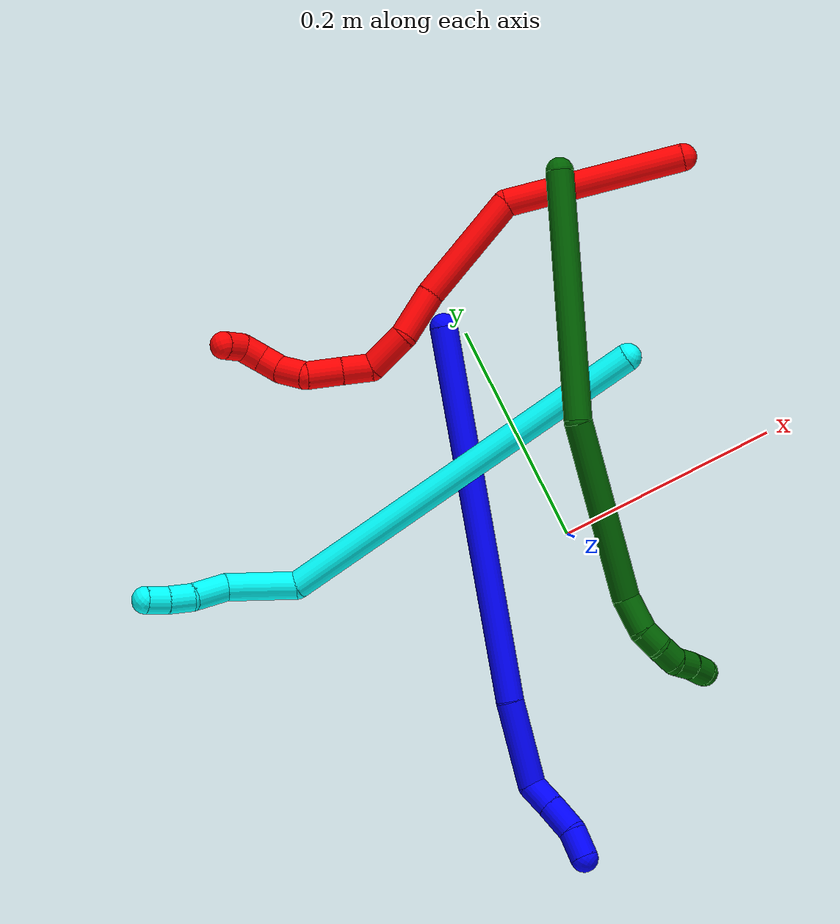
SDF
<sdf version="1.7">
 <world name="default">
  <model name="1">
   <static>0</static>
   <link name="1">
    <collision name="collision-cylinder-e_1_1_4">
     <pose>0.012416 -0.123575 -0.114828 2.31952 0.073472 0.168244</pose>
     <geometry><cylinder><radius>0.0125</radius><length>0.338292</length></cylinder></geometry>
     <surface>
      <friction><ode><mu>1.16</mu><mu2>1.16</mu2><slip1>0</slip1><slip2>0</slip2></ode></friction>
      <contact><ode><kp>1e+06</kp><kd>1</kd><max_vel>0</max_vel><min_depth>0.001</min_depth></ode></contact>
     </surface>
    </collision>
    <visual name="visual-cylinder-e_1_1_4">
     <pose>0.012416 -0.123575 -0.114828 2.31952 0.073472 0.168244</pose>
     <geometry><cylinder><radius>0.0125</radius><length>0.338292</length></cylinder></geometry>
     <material><ambient>0 0 1 1</ambient></material>
    </visual>
    <collision name="collision-cylinder-e_2_4_5">
     <pose>0.023035 -0.27496 -0.257169 2.35083 -0.045916 -0.109925</pose>
     <geometry><cylinder><radius>0.0125</radius><length>0.078322</length></cylinder></geometry>
     <surface>
      <friction><ode><mu>1.16</mu><mu2>1.16</mu2><slip1>0</slip1><slip2>0</slip2></ode></friction>
      <contact><ode><kp>1e+06</kp><kd>1</kd><max_vel>0</max_vel><min_depth>0.001</min_depth></ode></contact>
     </surface>
    </collision>
    <visual name="visual-cylinder-e_2_4_5">
     <pose>0.023035 -0.27496 -0.257169 2.35083 -0.045916 -0.109925</pose>
     <geometry><cylinder><radius>0.0125</radius><length>0.078322</length></cylinder></geometry>
     <material><ambient>0 0 1 1</ambient></material>
    </visual>
    <collision name="collision-cylinder-e_3_5_6">
     <pose>0.023691 -0.304545 -0.297652 3.00558 0.18525 1.87624</pose>
     <geometry><cylinder><radius>0.0125</radius><length>0.026637</length></cylinder></geometry>
     <surface>
      <friction><ode><mu>1.16</mu><mu2>1.16</mu2><slip1>0</slip1><slip2>0</slip2></ode></friction>
      <contact><ode><kp>1e+06</kp><kd>1</kd><max_vel>0</max_vel><min_depth>0.001</min_depth></ode></contact>
     </surface>
    </collision>
    <visual name="visual-cylinder-e_3_5_6">
     <pose>0.023691 -0.304545 -0.297652 3.00558 0.18525 1.87624</pose>
     <geometry><cylinder><radius>0.0125</radius><length>0.026637</length></cylinder></geometry>
     <material><ambient>0 0 1 1</ambient></material>
    </visual>
    <collision name="collision-cylinder-e_4_6_7">
     <pose>0.029297 -0.30868 -0.325108 2.9801 0.211583 1.83925</pose>
     <geometry><cylinder><radius>0.0125</radius><length>0.030024</length></cylinder></geometry>
     <surface>
      <friction><ode><mu>1.16</mu><mu2>1.16</mu2><slip1>0</slip1><slip2>0</slip2></ode></friction>
      <contact><ode><kp>1e+06</kp><kd>1</kd><max_vel>0</max_vel><min_depth>0.001</min_depth></ode></contact>
     </surface>
    </collision>
    <visual name="visual-cylinder-e_4_6_7">
     <pose>0.029297 -0.30868 -0.325108 2.9801 0.211583 1.83925</pose>
     <geometry><cylinder><radius>0.0125</radius><length>0.030024</length></cylinder></geometry>
     <material><ambient>0 0 1 1</ambient></material>
    </visual>
    <collision name="collision-cylinder-e_5_7_2">
     <pose>0.03522 -0.31723 -0.351107 2.64824 0.208887 0.788953</pose>
     <geometry><cylinder><radius>0.0125</radius><length>0.026725</length></cylinder></geometry>
     <surface>
      <friction><ode><mu>1.16</mu><mu2>1.16</mu2><slip1>0</slip1><slip2>0</slip2></ode></friction>
      <contact><ode><kp>1e+06</kp><kd>1</kd><max_vel>0</max_vel><min_depth>0.001</min_depth></ode></contact>
     </surface>
    </collision>
    <visual name="visual-cylinder-e_5_7_2">
     <pose>0.03522 -0.31723 -0.351107 2.64824 0.208887 0.788953</pose>
     <geometry><cylinder><radius>0.0125</radius><length>0.026725</length></cylinder></geometry>
     <material><ambient>0 0 1 1</ambient></material>
    </visual>
    <collision name="collision-sphere-2">
     <pose>0.037991 -0.323421 -0.36262 0 -0 0</pose>
     <geometry><sphere><radius>0.0125</radius></sphere></geometry>
     <surface>
      <friction><ode><mu>1.16</mu><mu2>1.16</mu2><slip1>0</slip1><slip2>0</slip2></ode></friction>
      <contact><ode><kp>1e+06</kp><kd>1</kd><max_vel>0</max_vel><min_depth>0.001</min_depth></ode></contact>
     </surface>
    </collision>
    <visual name="visual-sphere-2">
     <pose>0.037991 -0.323421 -0.36262 0 -0 0</pose>
     <geometry><sphere><radius>0.0125</radius></sphere></geometry>
     <material><ambient>0 0 1 1</ambient></material>
    </visual>
    <collision name="collision-sphere-7">
     <pose>0.032449 -0.31104 -0.339594 0 -0 0</pose>
     <geometry><sphere><radius>0.0125</radius></sphere></geometry>
     <surface>
      <friction><ode><mu>1.16</mu><mu2>1.16</mu2><slip1>0</slip1><slip2>0</slip2></ode></friction>
      <contact><ode><kp>1e+06</kp><kd>1</kd><max_vel>0</max_vel><min_depth>0.001</min_depth></ode></contact>
     </surface>
    </collision>
    <visual name="visual-sphere-7">
     <pose>0.032449 -0.31104 -0.339594 0 -0 0</pose>
     <geometry><sphere><radius>0.0125</radius></sphere></geometry>
     <material><ambient>0 0 1 1</ambient></material>
    </visual>
    <collision name="collision-sphere-6">
     <pose>0.026144 -0.30632 -0.310622 0 -0 0</pose>
     <geometry><sphere><radius>0.0125</radius></sphere></geometry>
     <surface>
      <friction><ode><mu>1.16</mu><mu2>1.16</mu2><slip1>0</slip1><slip2>0</slip2></ode></friction>
      <contact><ode><kp>1e+06</kp><kd>1</kd><max_vel>0</max_vel><min_depth>0.001</min_depth></ode></contact>
     </surface>
    </collision>
    <visual name="visual-sphere-6">
     <pose>0.026144 -0.30632 -0.310622 0 -0 0</pose>
     <geometry><sphere><radius>0.0125</radius></sphere></geometry>
     <material><ambient>0 0 1 1</ambient></material>
    </visual>
    <collision name="collision-sphere-5">
     <pose>0.021238 -0.30277 -0.284682 0 -0 0</pose>
     <geometry><sphere><radius>0.0125</radius></sphere></geometry>
     <surface>
      <friction><ode><mu>1.16</mu><mu2>1.16</mu2><slip1>0</slip1><slip2>0</slip2></ode></friction>
      <contact><ode><kp>1e+06</kp><kd>1</kd><max_vel>0</max_vel><min_depth>0.001</min_depth></ode></contact>
     </surface>
    </collision>
    <visual name="visual-sphere-5">
     <pose>0.021238 -0.30277 -0.284682 0 -0 0</pose>
     <geometry><sphere><radius>0.0125</radius></sphere></geometry>
     <material><ambient>0 0 1 1</ambient></material>
    </visual>
    <collision name="collision-sphere-1">
     <geometry><sphere><radius>0.0125</radius></sphere></geometry>
     <surface>
      <friction><ode><mu>1.16</mu><mu2>1.16</mu2><slip1>0</slip1><slip2>0</slip2></ode></friction>
      <contact><ode><kp>1e+06</kp><kd>1</kd><max_vel>0</max_vel><min_depth>0.001</min_depth></ode></contact>
     </surface>
    </collision>
    <visual name="visual-sphere-1">
     <geometry><sphere><radius>0.0125</radius></sphere></geometry>
     <material><ambient>0 0 1 1</ambient></material>
    </visual>
    <collision name="collision-sphere-4">
     <pose>0.024833 -0.24715 -0.229656 0 -0 0</pose>
     <geometry><sphere><radius>0.0125</radius></sphere></geometry>
     <surface>
      <friction><ode><mu>1.16</mu><mu2>1.16</mu2><slip1>0</slip1><slip2>0</slip2></ode></friction>
      <contact><ode><kp>1e+06</kp><kd>1</kd><max_vel>0</max_vel><min_depth>0.001</min_depth></ode></contact>
     </surface>
    </collision>
    <visual name="visual-sphere-4">
     <pose>0.024833 -0.24715 -0.229656 0 -0 0</pose>
     <geometry><sphere><radius>0.0125</radius></sphere></geometry>
     <material><ambient>0 0 1 1</ambient></material>
    </visual>
    <inertial>
     <pose>0.016913 -0.178396 -0.17212 0 -0 0</pose>
     <mass>0.5</mass>
     <inertia>
      <ixx>0.003775</ixx>
      <ixy>0</ixy>
      <ixz>0</ixz>
      <iyy>-0.001656</iyy>
      <iyz>0</iyz>
      <izz>0.002133</izz>
     </inertia>
    </inertial>
   </link>
   <pose>-0.015288 0.214438 0.011494 2.2758 -1.1391 2.98457</pose>
  </model>
  <model name="2">
   <static>0</static>
   <link name="2">
    <collision name="collision-cylinder-e_1_1_4">
     <pose>-0.08092 -0.004396 0.007676 0.520164 -1.46192 -0.468452</pose>
     <geometry><cylinder><radius>0.0125</radius><length>0.162805</length></cylinder></geometry>
     <surface>
      <friction><ode><mu>1.16</mu><mu2>1.16</mu2><slip1>0</slip1><slip2>0</slip2></ode></friction>
      <contact><ode><kp>1e+06</kp><kd>1</kd><max_vel>0</max_vel><min_depth>0.001</min_depth></ode></contact>
     </surface>
    </collision>
    <visual name="visual-cylinder-e_1_1_4">
     <pose>-0.08092 -0.004396 0.007676 0.520164 -1.46192 -0.468452</pose>
     <geometry><cylinder><radius>0.0125</radius><length>0.162805</length></cylinder></geometry>
     <material><ambient>1 0 0 1</ambient></material>
    </visual>
    <collision name="collision-cylinder-e_2_4_5">
     <pose>-0.207197 -0.005748 -0.011451 -3.02847 -1.03427 2.94314</pose>
     <geometry><cylinder><radius>0.0125</radius><length>0.105543</length></cylinder></geometry>
     <surface>
      <friction><ode><mu>1.16</mu><mu2>1.16</mu2><slip1>0</slip1><slip2>0</slip2></ode></friction>
      <contact><ode><kp>1e+06</kp><kd>1</kd><max_vel>0</max_vel><min_depth>0.001</min_depth></ode></contact>
     </surface>
    </collision>
    <visual name="visual-cylinder-e_2_4_5">
     <pose>-0.207197 -0.005748 -0.011451 -3.02847 -1.03427 2.94314</pose>
     <geometry><cylinder><radius>0.0125</radius><length>0.105543</length></cylinder></geometry>
     <material><ambient>1 0 0 1</ambient></material>
    </visual>
    <collision name="collision-cylinder-e_3_5_6">
     <pose>-0.269863 -0.002902 -0.05255 3.12765 -0.880353 -3.112</pose>
     <geometry><cylinder><radius>0.0125</radius><length>0.044903</length></cylinder></geometry>
     <surface>
      <friction><ode><mu>1.16</mu><mu2>1.16</mu2><slip1>0</slip1><slip2>0</slip2></ode></friction>
      <contact><ode><kp>1e+06</kp><kd>1</kd><max_vel>0</max_vel><min_depth>0.001</min_depth></ode></contact>
     </surface>
    </collision>
    <visual name="visual-cylinder-e_3_5_6">
     <pose>-0.269863 -0.002902 -0.05255 3.12765 -0.880353 -3.112</pose>
     <geometry><cylinder><radius>0.0125</radius><length>0.044903</length></cylinder></geometry>
     <material><ambient>1 0 0 1</ambient></material>
    </visual>
    <collision name="collision-cylinder-e_4_6_7">
     <pose>-0.305319 0.001082 -0.073897 -2.60605 -1.14649 2.33786</pose>
     <geometry><cylinder><radius>0.0125</radius><length>0.039826</length></cylinder></geometry>
     <surface>
      <friction><ode><mu>1.16</mu><mu2>1.16</mu2><slip1>0</slip1><slip2>0</slip2></ode></friction>
      <contact><ode><kp>1e+06</kp><kd>1</kd><max_vel>0</max_vel><min_depth>0.001</min_depth></ode></contact>
     </surface>
    </collision>
    <visual name="visual-cylinder-e_4_6_7">
     <pose>-0.305319 0.001082 -0.073897 -2.60605 -1.14649 2.33786</pose>
     <geometry><cylinder><radius>0.0125</radius><length>0.039826</length></cylinder></geometry>
     <material><ambient>1 0 0 1</ambient></material>
    </visual>
    <collision name="collision-cylinder-e_5_7_8">
     <pose>-0.33665 0.003165 -0.078314 0.673191 -1.32063 -0.530675</pose>
     <geometry><cylinder><radius>0.0125</radius><length>0.027216</length></cylinder></geometry>
     <surface>
      <friction><ode><mu>1.16</mu><mu2>1.16</mu2><slip1>0</slip1><slip2>0</slip2></ode></friction>
      <contact><ode><kp>1e+06</kp><kd>1</kd><max_vel>0</max_vel><min_depth>0.001</min_depth></ode></contact>
     </surface>
    </collision>
    <visual name="visual-cylinder-e_5_7_8">
     <pose>-0.33665 0.003165 -0.078314 0.673191 -1.32063 -0.530675</pose>
     <geometry><cylinder><radius>0.0125</radius><length>0.027216</length></cylinder></geometry>
     <material><ambient>1 0 0 1</ambient></material>
    </visual>
    <collision name="collision-cylinder-e_6_8_9">
     <pose>-0.365186 -0.004311 -0.073847 1.24224 -1.21645 -0.924507</pose>
     <geometry><cylinder><radius>0.0125</radius><length>0.032736</length></cylinder></geometry>
     <surface>
      <friction><ode><mu>1.16</mu><mu2>1.16</mu2><slip1>0</slip1><slip2>0</slip2></ode></friction>
      <contact><ode><kp>1e+06</kp><kd>1</kd><max_vel>0</max_vel><min_depth>0.001</min_depth></ode></contact>
     </surface>
    </collision>
    <visual name="visual-cylinder-e_6_8_9">
     <pose>-0.365186 -0.004311 -0.073847 1.24224 -1.21645 -0.924507</pose>
     <geometry><cylinder><radius>0.0125</radius><length>0.032736</length></cylinder></geometry>
     <material><ambient>1 0 0 1</ambient></material>
    </visual>
    <collision name="collision-cylinder-e_7_9_10">
     <pose>-0.390588 -0.007269 -0.064028 -0.29399 -0.877886 0.138805</pose>
     <geometry><cylinder><radius>0.0125</radius><length>0.026128</length></cylinder></geometry>
     <surface>
      <friction><ode><mu>1.16</mu><mu2>1.16</mu2><slip1>0</slip1><slip2>0</slip2></ode></friction>
      <contact><ode><kp>1e+06</kp><kd>1</kd><max_vel>0</max_vel><min_depth>0.001</min_depth></ode></contact>
     </surface>
    </collision>
    <visual name="visual-cylinder-e_7_9_10">
     <pose>-0.390588 -0.007269 -0.064028 -0.29399 -0.877886 0.138805</pose>
     <geometry><cylinder><radius>0.0125</radius><length>0.026128</length></cylinder></geometry>
     <material><ambient>1 0 0 1</ambient></material>
    </visual>
    <collision name="collision-cylinder-e_8_10_11">
     <pose>-0.407008 -0.005749 -0.048342 0.116154 -0.687838 -0.041642</pose>
     <geometry><cylinder><radius>0.0125</radius><length>0.020064</length></cylinder></geometry>
     <surface>
      <friction><ode><mu>1.16</mu><mu2>1.16</mu2><slip1>0</slip1><slip2>0</slip2></ode></friction>
      <contact><ode><kp>1e+06</kp><kd>1</kd><max_vel>0</max_vel><min_depth>0.001</min_depth></ode></contact>
     </surface>
    </collision>
    <visual name="visual-cylinder-e_8_10_11">
     <pose>-0.407008 -0.005749 -0.048342 0.116154 -0.687838 -0.041642</pose>
     <geometry><cylinder><radius>0.0125</radius><length>0.020064</length></cylinder></geometry>
     <material><ambient>1 0 0 1</ambient></material>
    </visual>
    <collision name="collision-cylinder-e_9_11_12">
     <pose>-0.419613 -0.011447 -0.034206 0.640646 -0.660303 -0.226404</pose>
     <geometry><cylinder><radius>0.0125</radius><length>0.020333</length></cylinder></geometry>
     <surface>
      <friction><ode><mu>1.16</mu><mu2>1.16</mu2><slip1>0</slip1><slip2>0</slip2></ode></friction>
      <contact><ode><kp>1e+06</kp><kd>1</kd><max_vel>0</max_vel><min_depth>0.001</min_depth></ode></contact>
     </surface>
    </collision>
    <visual name="visual-cylinder-e_9_11_12">
     <pose>-0.419613 -0.011447 -0.034206 0.640646 -0.660303 -0.226404</pose>
     <geometry><cylinder><radius>0.0125</radius><length>0.020333</length></cylinder></geometry>
     <material><ambient>1 0 0 1</ambient></material>
    </visual>
    <collision name="collision-cylinder-e_10_12_2">
     <pose>-0.432371 -0.024082 -0.027009 1.47416 -0.691857 -0.632388</pose>
     <geometry><cylinder><radius>0.0125</radius><length>0.020448</length></cylinder></geometry>
     <surface>
      <friction><ode><mu>1.16</mu><mu2>1.16</mu2><slip1>0</slip1><slip2>0</slip2></ode></friction>
      <contact><ode><kp>1e+06</kp><kd>1</kd><max_vel>0</max_vel><min_depth>0.001</min_depth></ode></contact>
     </surface>
    </collision>
    <visual name="visual-cylinder-e_10_12_2">
     <pose>-0.432371 -0.024082 -0.027009 1.47416 -0.691857 -0.632388</pose>
     <geometry><cylinder><radius>0.0125</radius><length>0.020448</length></cylinder></geometry>
     <material><ambient>1 0 0 1</ambient></material>
    </visual>
    <collision name="collision-sphere-2">
     <pose>-0.438894 -0.031918 -0.026249 0 -0 0</pose>
     <geometry><sphere><radius>0.0125</radius></sphere></geometry>
     <surface>
      <friction><ode><mu>1.16</mu><mu2>1.16</mu2><slip1>0</slip1><slip2>0</slip2></ode></friction>
      <contact><ode><kp>1e+06</kp><kd>1</kd><max_vel>0</max_vel><min_depth>0.001</min_depth></ode></contact>
     </surface>
    </collision>
    <visual name="visual-sphere-2">
     <pose>-0.438894 -0.031918 -0.026249 0 -0 0</pose>
     <geometry><sphere><radius>0.0125</radius></sphere></geometry>
     <material><ambient>1 0 0 1</ambient></material>
    </visual>
    <collision name="collision-sphere-12">
     <pose>-0.425849 -0.016246 -0.027769 0 -0 0</pose>
     <geometry><sphere><radius>0.0125</radius></sphere></geometry>
     <surface>
      <friction><ode><mu>1.16</mu><mu2>1.16</mu2><slip1>0</slip1><slip2>0</slip2></ode></friction>
      <contact><ode><kp>1e+06</kp><kd>1</kd><max_vel>0</max_vel><min_depth>0.001</min_depth></ode></contact>
     </surface>
    </collision>
    <visual name="visual-sphere-12">
     <pose>-0.425849 -0.016246 -0.027769 0 -0 0</pose>
     <geometry><sphere><radius>0.0125</radius></sphere></geometry>
     <material><ambient>1 0 0 1</ambient></material>
    </visual>
    <collision name="collision-sphere-11">
     <pose>-0.413377 -0.006647 -0.040644 0 -0 0</pose>
     <geometry><sphere><radius>0.0125</radius></sphere></geometry>
     <surface>
      <friction><ode><mu>1.16</mu><mu2>1.16</mu2><slip1>0</slip1><slip2>0</slip2></ode></friction>
      <contact><ode><kp>1e+06</kp><kd>1</kd><max_vel>0</max_vel><min_depth>0.001</min_depth></ode></contact>
     </surface>
    </collision>
    <visual name="visual-sphere-11">
     <pose>-0.413377 -0.006647 -0.040644 0 -0 0</pose>
     <geometry><sphere><radius>0.0125</radius></sphere></geometry>
     <material><ambient>1 0 0 1</ambient></material>
    </visual>
    <collision name="collision-sphere-10">
     <pose>-0.400639 -0.004851 -0.056041 0 -0 0</pose>
     <geometry><sphere><radius>0.0125</radius></sphere></geometry>
     <surface>
      <friction><ode><mu>1.16</mu><mu2>1.16</mu2><slip1>0</slip1><slip2>0</slip2></ode></friction>
      <contact><ode><kp>1e+06</kp><kd>1</kd><max_vel>0</max_vel><min_depth>0.001</min_depth></ode></contact>
     </surface>
    </collision>
    <visual name="visual-sphere-10">
     <pose>-0.400639 -0.004851 -0.056041 0 -0 0</pose>
     <geometry><sphere><radius>0.0125</radius></sphere></geometry>
     <material><ambient>1 0 0 1</ambient></material>
    </visual>
    <collision name="collision-sphere-9">
     <pose>-0.380537 -0.009687 -0.072015 0 -0 0</pose>
     <geometry><sphere><radius>0.0125</radius></sphere></geometry>
     <surface>
      <friction><ode><mu>1.16</mu><mu2>1.16</mu2><slip1>0</slip1><slip2>0</slip2></ode></friction>
      <contact><ode><kp>1e+06</kp><kd>1</kd><max_vel>0</max_vel><min_depth>0.001</min_depth></ode></contact>
     </surface>
    </collision>
    <visual name="visual-sphere-9">
     <pose>-0.380537 -0.009687 -0.072015 0 -0 0</pose>
     <geometry><sphere><radius>0.0125</radius></sphere></geometry>
     <material><ambient>1 0 0 1</ambient></material>
    </visual>
    <collision name="collision-sphere-4">
     <pose>-0.161841 -0.008793 0.015351 0 -0 0</pose>
     <geometry><sphere><radius>0.0125</radius></sphere></geometry>
     <surface>
      <friction><ode><mu>1.16</mu><mu2>1.16</mu2><slip1>0</slip1><slip2>0</slip2></ode></friction>
      <contact><ode><kp>1e+06</kp><kd>1</kd><max_vel>0</max_vel><min_depth>0.001</min_depth></ode></contact>
     </surface>
    </collision>
    <visual name="visual-sphere-4">
     <pose>-0.161841 -0.008793 0.015351 0 -0 0</pose>
     <geometry><sphere><radius>0.0125</radius></sphere></geometry>
     <material><ambient>1 0 0 1</ambient></material>
    </visual>
    <collision name="collision-sphere-1">
     <geometry><sphere><radius>0.0125</radius></sphere></geometry>
     <surface>
      <friction><ode><mu>1.16</mu><mu2>1.16</mu2><slip1>0</slip1><slip2>0</slip2></ode></friction>
      <contact><ode><kp>1e+06</kp><kd>1</kd><max_vel>0</max_vel><min_depth>0.001</min_depth></ode></contact>
     </surface>
    </collision>
    <visual name="visual-sphere-1">
     <geometry><sphere><radius>0.0125</radius></sphere></geometry>
     <material><ambient>1 0 0 1</ambient></material>
    </visual>
    <collision name="collision-sphere-8">
     <pose>-0.349835 0.001064 -0.07568 0 -0 0</pose>
     <geometry><sphere><radius>0.0125</radius></sphere></geometry>
     <surface>
      <friction><ode><mu>1.16</mu><mu2>1.16</mu2><slip1>0</slip1><slip2>0</slip2></ode></friction>
      <contact><ode><kp>1e+06</kp><kd>1</kd><max_vel>0</max_vel><min_depth>0.001</min_depth></ode></contact>
     </surface>
    </collision>
    <visual name="visual-sphere-8">
     <pose>-0.349835 0.001064 -0.07568 0 -0 0</pose>
     <geometry><sphere><radius>0.0125</radius></sphere></geometry>
     <material><ambient>1 0 0 1</ambient></material>
    </visual>
    <collision name="collision-sphere-5">
     <pose>-0.252554 -0.002703 -0.038252 0 -0 0</pose>
     <geometry><sphere><radius>0.0125</radius></sphere></geometry>
     <surface>
      <friction><ode><mu>1.16</mu><mu2>1.16</mu2><slip1>0</slip1><slip2>0</slip2></ode></friction>
      <contact><ode><kp>1e+06</kp><kd>1</kd><max_vel>0</max_vel><min_depth>0.001</min_depth></ode></contact>
     </surface>
    </collision>
    <visual name="visual-sphere-5">
     <pose>-0.252554 -0.002703 -0.038252 0 -0 0</pose>
     <geometry><sphere><radius>0.0125</radius></sphere></geometry>
     <material><ambient>1 0 0 1</ambient></material>
    </visual>
    <collision name="collision-sphere-6">
     <pose>-0.287172 -0.003102 -0.066847 0 -0 0</pose>
     <geometry><sphere><radius>0.0125</radius></sphere></geometry>
     <surface>
      <friction><ode><mu>1.16</mu><mu2>1.16</mu2><slip1>0</slip1><slip2>0</slip2></ode></friction>
      <contact><ode><kp>1e+06</kp><kd>1</kd><max_vel>0</max_vel><min_depth>0.001</min_depth></ode></contact>
     </surface>
    </collision>
    <visual name="visual-sphere-6">
     <pose>-0.287172 -0.003102 -0.066847 0 -0 0</pose>
     <geometry><sphere><radius>0.0125</radius></sphere></geometry>
     <material><ambient>1 0 0 1</ambient></material>
    </visual>
    <collision name="collision-sphere-7">
     <pose>-0.323466 0.005265 -0.080947 0 -0 0</pose>
     <geometry><sphere><radius>0.0125</radius></sphere></geometry>
     <surface>
      <friction><ode><mu>1.16</mu><mu2>1.16</mu2><slip1>0</slip1><slip2>0</slip2></ode></friction>
      <contact><ode><kp>1e+06</kp><kd>1</kd><max_vel>0</max_vel><min_depth>0.001</min_depth></ode></contact>
     </surface>
    </collision>
    <visual name="visual-sphere-7">
     <pose>-0.323466 0.005265 -0.080947 0 -0 0</pose>
     <geometry><sphere><radius>0.0125</radius></sphere></geometry>
     <material><ambient>1 0 0 1</ambient></material>
    </visual>
    <inertial>
     <pose>-0.232361 -0.00499 -0.027402 0 -0 0</pose>
     <mass>0.5</mass>
     <inertia><ixx>-6e-05</ixx><ixy>0</ixy><ixz>0</ixz><iyy>0.000484</iyy><iyz>0</iyz><izz>0.00049</izz></inertia>
    </inertial>
   </link>
   <pose>0.24268 0.252414 0.01929 -1.89917 -0.064052 -0.11235</pose>
  </model>
  <model name="3">
   <static>0</static>
   <link name="3">
    <collision name="collision-cylinder-e_1_1_4">
     <pose>-0.064739 0.025564 0.164972 -0.153739 -0.369942 0.028821</pose>
     <geometry><cylinder><radius>0.0125</radius><length>0.358108</length></cylinder></geometry>
     <surface>
      <friction><ode><mu>1.16</mu><mu2>1.16</mu2><slip1>0</slip1><slip2>0</slip2></ode></friction>
      <contact><ode><kp>1e+06</kp><kd>1</kd><max_vel>0</max_vel><min_depth>0.001</min_depth></ode></contact>
     </surface>
    </collision>
    <visual name="visual-cylinder-e_1_1_4">
     <pose>-0.064739 0.025564 0.164972 -0.153739 -0.369942 0.028821</pose>
     <geometry><cylinder><radius>0.0125</radius><length>0.358108</length></cylinder></geometry>
     <material><ambient>0.003922 1 0.996078 1</ambient></material>
    </visual>
    <collision name="collision-cylinder-e_2_4_5">
     <pose>-0.153794 0.046012 0.34986 0.251473 -0.868836 -0.117163</pose>
     <geometry><cylinder><radius>0.0125</radius><length>0.063691</length></cylinder></geometry>
     <surface>
      <friction><ode><mu>1.16</mu><mu2>1.16</mu2><slip1>0</slip1><slip2>0</slip2></ode></friction>
      <contact><ode><kp>1e+06</kp><kd>1</kd><max_vel>0</max_vel><min_depth>0.001</min_depth></ode></contact>
     </surface>
    </collision>
    <visual name="visual-cylinder-e_2_4_5">
     <pose>-0.153794 0.046012 0.34986 0.251473 -0.868836 -0.117163</pose>
     <geometry><cylinder><radius>0.0125</radius><length>0.063691</length></cylinder></geometry>
     <material><ambient>0.003922 1 0.996078 1</ambient></material>
    </visual>
    <collision name="collision-cylinder-e_3_5_6">
     <pose>-0.192591 0.047801 0.376705 -0.783754 -0.976614 0.432195</pose>
     <geometry><cylinder><radius>0.0125</radius><length>0.03495</length></cylinder></geometry>
     <surface>
      <friction><ode><mu>1.16</mu><mu2>1.16</mu2><slip1>0</slip1><slip2>0</slip2></ode></friction>
      <contact><ode><kp>1e+06</kp><kd>1</kd><max_vel>0</max_vel><min_depth>0.001</min_depth></ode></contact>
     </surface>
    </collision>
    <visual name="visual-cylinder-e_3_5_6">
     <pose>-0.192591 0.047801 0.376705 -0.783754 -0.976614 0.432195</pose>
     <geometry><cylinder><radius>0.0125</radius><length>0.03495</length></cylinder></geometry>
     <material><ambient>0.003922 1 0.996078 1</ambient></material>
    </visual>
    <collision name="collision-cylinder-e_4_6_7">
     <pose>-0.216958 0.056275 0.389042 -0.282159 -1.05313 0.164744</pose>
     <geometry><cylinder><radius>0.0125</radius><length>0.022756</length></cylinder></geometry>
     <surface>
      <friction><ode><mu>1.16</mu><mu2>1.16</mu2><slip1>0</slip1><slip2>0</slip2></ode></friction>
      <contact><ode><kp>1e+06</kp><kd>1</kd><max_vel>0</max_vel><min_depth>0.001</min_depth></ode></contact>
     </surface>
    </collision>
    <visual name="visual-cylinder-e_4_6_7">
     <pose>-0.216958 0.056275 0.389042 -0.282159 -1.05313 0.164744</pose>
     <geometry><cylinder><radius>0.0125</radius><length>0.022756</length></cylinder></geometry>
     <material><ambient>0.003922 1 0.996078 1</ambient></material>
    </visual>
    <collision name="collision-cylinder-e_5_7_2">
     <pose>-0.236327 0.058835 0.398208 -0.258059 -1.18176 0.173642</pose>
     <geometry><cylinder><radius>0.0125</radius><length>0.020495</length></cylinder></geometry>
     <surface>
      <friction><ode><mu>1.16</mu><mu2>1.16</mu2><slip1>0</slip1><slip2>0</slip2></ode></friction>
      <contact><ode><kp>1e+06</kp><kd>1</kd><max_vel>0</max_vel><min_depth>0.001</min_depth></ode></contact>
     </surface>
    </collision>
    <visual name="visual-cylinder-e_5_7_2">
     <pose>-0.236327 0.058835 0.398208 -0.258059 -1.18176 0.173642</pose>
     <geometry><cylinder><radius>0.0125</radius><length>0.020495</length></cylinder></geometry>
     <material><ambient>0.003922 1 0.996078 1</ambient></material>
    </visual>
    <collision name="collision-sphere-2">
     <pose>-0.245809 0.059827 0.401966 0 -0 0</pose>
     <geometry><sphere><radius>0.0125</radius></sphere></geometry>
     <surface>
      <friction><ode><mu>1.16</mu><mu2>1.16</mu2><slip1>0</slip1><slip2>0</slip2></ode></friction>
      <contact><ode><kp>1e+06</kp><kd>1</kd><max_vel>0</max_vel><min_depth>0.001</min_depth></ode></contact>
     </surface>
    </collision>
    <visual name="visual-sphere-2">
     <pose>-0.245809 0.059827 0.401966 0 -0 0</pose>
     <geometry><sphere><radius>0.0125</radius></sphere></geometry>
     <material><ambient>0.003922 1 0.996078 1</ambient></material>
    </visual>
    <collision name="collision-sphere-7">
     <pose>-0.226846 0.057843 0.39445 0 -0 0</pose>
     <geometry><sphere><radius>0.0125</radius></sphere></geometry>
     <surface>
      <friction><ode><mu>1.16</mu><mu2>1.16</mu2><slip1>0</slip1><slip2>0</slip2></ode></friction>
      <contact><ode><kp>1e+06</kp><kd>1</kd><max_vel>0</max_vel><min_depth>0.001</min_depth></ode></contact>
     </surface>
    </collision>
    <visual name="visual-sphere-7">
     <pose>-0.226846 0.057843 0.39445 0 -0 0</pose>
     <geometry><sphere><radius>0.0125</radius></sphere></geometry>
     <material><ambient>0.003922 1 0.996078 1</ambient></material>
    </visual>
    <collision name="collision-sphere-6">
     <pose>-0.207071 0.054708 0.383634 0 -0 0</pose>
     <geometry><sphere><radius>0.0125</radius></sphere></geometry>
     <surface>
      <friction><ode><mu>1.16</mu><mu2>1.16</mu2><slip1>0</slip1><slip2>0</slip2></ode></friction>
      <contact><ode><kp>1e+06</kp><kd>1</kd><max_vel>0</max_vel><min_depth>0.001</min_depth></ode></contact>
     </surface>
    </collision>
    <visual name="visual-sphere-6">
     <pose>-0.207071 0.054708 0.383634 0 -0 0</pose>
     <geometry><sphere><radius>0.0125</radius></sphere></geometry>
     <material><ambient>0.003922 1 0.996078 1</ambient></material>
    </visual>
    <collision name="collision-sphere-5">
     <pose>-0.178111 0.040895 0.369776 0 -0 0</pose>
     <geometry><sphere><radius>0.0125</radius></sphere></geometry>
     <surface>
      <friction><ode><mu>1.16</mu><mu2>1.16</mu2><slip1>0</slip1><slip2>0</slip2></ode></friction>
      <contact><ode><kp>1e+06</kp><kd>1</kd><max_vel>0</max_vel><min_depth>0.001</min_depth></ode></contact>
     </surface>
    </collision>
    <visual name="visual-sphere-5">
     <pose>-0.178111 0.040895 0.369776 0 -0 0</pose>
     <geometry><sphere><radius>0.0125</radius></sphere></geometry>
     <material><ambient>0.003922 1 0.996078 1</ambient></material>
    </visual>
    <collision name="collision-sphere-1">
     <geometry><sphere><radius>0.0125</radius></sphere></geometry>
     <surface>
      <friction><ode><mu>1.16</mu><mu2>1.16</mu2><slip1>0</slip1><slip2>0</slip2></ode></friction>
      <contact><ode><kp>1e+06</kp><kd>1</kd><max_vel>0</max_vel><min_depth>0.001</min_depth></ode></contact>
     </surface>
    </collision>
    <visual name="visual-sphere-1">
     <geometry><sphere><radius>0.0125</radius></sphere></geometry>
     <material><ambient>0.003922 1 0.996078 1</ambient></material>
    </visual>
    <collision name="collision-sphere-4">
     <pose>-0.129478 0.051129 0.329943 0 -0 0</pose>
     <geometry><sphere><radius>0.0125</radius></sphere></geometry>
     <surface>
      <friction><ode><mu>1.16</mu><mu2>1.16</mu2><slip1>0</slip1><slip2>0</slip2></ode></friction>
      <contact><ode><kp>1e+06</kp><kd>1</kd><max_vel>0</max_vel><min_depth>0.001</min_depth></ode></contact>
     </surface>
    </collision>
    <visual name="visual-sphere-4">
     <pose>-0.129478 0.051129 0.329943 0 -0 0</pose>
     <geometry><sphere><radius>0.0125</radius></sphere></geometry>
     <material><ambient>0.003922 1 0.996078 1</ambient></material>
    </visual>
    <inertial>
     <pose>-0.098981 0.032485 0.223082 0 -0 0</pose>
     <mass>0.5</mass>
     <inertia>
      <ixx>0.003683</ixx>
      <ixy>0</ixy>
      <ixz>0</ixz>
      <iyy>0.003939</iyy>
      <iyz>0</iyz>
      <izz>0.000899</izz>
     </inertia>
    </inertial>
   </link>
   <pose>0.115704 0.115672 0.061753 2.16121 0.566778 -0.887806</pose>
  </model>
  <model name="6">
   <static>0</static>
   <link name="6">
    <collision name="collision-cylinder-e_1_1_4">
     <pose>0.017557 0.008794 -0.10849 -3.06072 0.15992 -2.20642</pose>
     <geometry><cylinder><radius>0.0125</radius><length>0.220506</length></cylinder></geometry>
     <surface>
      <friction><ode><mu>1.16</mu><mu2>1.16</mu2><slip1>0</slip1><slip2>0</slip2></ode></friction>
      <contact><ode><kp>1e+06</kp><kd>1</kd><max_vel>0</max_vel><min_depth>0.001</min_depth></ode></contact>
     </surface>
    </collision>
    <visual name="visual-cylinder-e_1_1_4">
     <pose>0.017557 0.008794 -0.10849 -3.06072 0.15992 -2.20642</pose>
     <geometry><cylinder><radius>0.0125</radius><length>0.220506</length></cylinder></geometry>
     <material><ambient>0 0.392157 0.003922 1</ambient></material>
    </visual>
    <collision name="collision-cylinder-e_2_4_5">
     <pose>0.069706 0.001328 -0.290635 2.92434 0.430007 2.21526</pose>
     <geometry><cylinder><radius>0.0125</radius><length>0.165964</length></cylinder></geometry>
     <surface>
      <friction><ode><mu>1.16</mu><mu2>1.16</mu2><slip1>0</slip1><slip2>0</slip2></ode></friction>
      <contact><ode><kp>1e+06</kp><kd>1</kd><max_vel>0</max_vel><min_depth>0.001</min_depth></ode></contact>
     </surface>
    </collision>
    <visual name="visual-cylinder-e_2_4_5">
     <pose>0.069706 0.001328 -0.290635 2.92434 0.430007 2.21526</pose>
     <geometry><cylinder><radius>0.0125</radius><length>0.165964</length></cylinder></geometry>
     <material><ambient>0 0.392157 0.003922 1</ambient></material>
    </visual>
    <collision name="collision-cylinder-e_3_5_6">
     <pose>0.105207 -0.019963 -0.379898 2.82967 0.055265 0.34801</pose>
     <geometry><cylinder><radius>0.0125</radius><length>0.03285</length></cylinder></geometry>
     <surface>
      <friction><ode><mu>1.16</mu><mu2>1.16</mu2><slip1>0</slip1><slip2>0</slip2></ode></friction>
      <contact><ode><kp>1e+06</kp><kd>1</kd><max_vel>0</max_vel><min_depth>0.001</min_depth></ode></contact>
     </surface>
    </collision>
    <visual name="visual-cylinder-e_3_5_6">
     <pose>0.105207 -0.019963 -0.379898 2.82967 0.055265 0.34801</pose>
     <geometry><cylinder><radius>0.0125</radius><length>0.03285</length></cylinder></geometry>
     <material><ambient>0 0.392157 0.003922 1</ambient></material>
    </visual>
    <collision name="collision-cylinder-e_4_6_7">
     <pose>0.107308 -0.031321 -0.403569 2.47634 0.115938 0.332871</pose>
     <geometry><cylinder><radius>0.0125</radius><length>0.020633</length></cylinder></geometry>
     <surface>
      <friction><ode><mu>1.16</mu><mu2>1.16</mu2><slip1>0</slip1><slip2>0</slip2></ode></friction>
      <contact><ode><kp>1e+06</kp><kd>1</kd><max_vel>0</max_vel><min_depth>0.001</min_depth></ode></contact>
     </surface>
    </collision>
    <visual name="visual-cylinder-e_4_6_7">
     <pose>0.107308 -0.031321 -0.403569 2.47634 0.115938 0.332871</pose>
     <geometry><cylinder><radius>0.0125</radius><length>0.020633</length></cylinder></geometry>
     <material><ambient>0 0.392157 0.003922 1</ambient></material>
    </visual>
    <collision name="collision-cylinder-e_5_7_8">
     <pose>0.112027 -0.044385 -0.418157 2.34017 0.359514 0.810435</pose>
     <geometry><cylinder><radius>0.0125</radius><length>0.020042</length></cylinder></geometry>
     <surface>
      <friction><ode><mu>1.16</mu><mu2>1.16</mu2><slip1>0</slip1><slip2>0</slip2></ode></friction>
      <contact><ode><kp>1e+06</kp><kd>1</kd><max_vel>0</max_vel><min_depth>0.001</min_depth></ode></contact>
     </surface>
    </collision>
    <visual name="visual-cylinder-e_5_7_8">
     <pose>0.112027 -0.044385 -0.418157 2.34017 0.359514 0.810435</pose>
     <geometry><cylinder><radius>0.0125</radius><length>0.020042</length></cylinder></geometry>
     <material><ambient>0 0.392157 0.003922 1</ambient></material>
    </visual>
    <collision name="collision-cylinder-e_6_8_9">
     <pose>0.120701 -0.059452 -0.42671 1.80953 0.540885 0.678331</pose>
     <geometry><cylinder><radius>0.0125</radius><length>0.02</length></cylinder></geometry>
     <surface>
      <friction><ode><mu>1.16</mu><mu2>1.16</mu2><slip1>0</slip1><slip2>0</slip2></ode></friction>
      <contact><ode><kp>1e+06</kp><kd>1</kd><max_vel>0</max_vel><min_depth>0.001</min_depth></ode></contact>
     </surface>
    </collision>
    <visual name="visual-cylinder-e_6_8_9">
     <pose>0.120701 -0.059452 -0.42671 1.80953 0.540885 0.678331</pose>
     <geometry><cylinder><radius>0.0125</radius><length>0.02</length></cylinder></geometry>
     <material><ambient>0 0.392157 0.003922 1</ambient></material>
    </visual>
    <collision name="collision-cylinder-e_7_9_2">
     <pose>0.131583 -0.075441 -0.431658 1.93515 0.610283 0.857713</pose>
     <geometry><cylinder><radius>0.0125</radius><length>0.020005</length></cylinder></geometry>
     <surface>
      <friction><ode><mu>1.16</mu><mu2>1.16</mu2><slip1>0</slip1><slip2>0</slip2></ode></friction>
      <contact><ode><kp>1e+06</kp><kd>1</kd><max_vel>0</max_vel><min_depth>0.001</min_depth></ode></contact>
     </surface>
    </collision>
    <visual name="visual-cylinder-e_7_9_2">
     <pose>0.131583 -0.075441 -0.431658 1.93515 0.610283 0.857713</pose>
     <geometry><cylinder><radius>0.0125</radius><length>0.020005</length></cylinder></geometry>
     <material><ambient>0 0.392157 0.003922 1</ambient></material>
    </visual>
    <collision name="collision-sphere-2">
     <pose>0.137315 -0.083099 -0.434579 0 -0 0</pose>
     <geometry><sphere><radius>0.0125</radius></sphere></geometry>
     <surface>
      <friction><ode><mu>1.16</mu><mu2>1.16</mu2><slip1>0</slip1><slip2>0</slip2></ode></friction>
      <contact><ode><kp>1e+06</kp><kd>1</kd><max_vel>0</max_vel><min_depth>0.001</min_depth></ode></contact>
     </surface>
    </collision>
    <visual name="visual-sphere-2">
     <pose>0.137315 -0.083099 -0.434579 0 -0 0</pose>
     <geometry><sphere><radius>0.0125</radius></sphere></geometry>
     <material><ambient>0 0.392157 0.003922 1</ambient></material>
    </visual>
    <collision name="collision-sphere-9">
     <pose>0.12585 -0.067782 -0.428737 0 -0 0</pose>
     <geometry><sphere><radius>0.0125</radius></sphere></geometry>
     <surface>
      <friction><ode><mu>1.16</mu><mu2>1.16</mu2><slip1>0</slip1><slip2>0</slip2></ode></friction>
      <contact><ode><kp>1e+06</kp><kd>1</kd><max_vel>0</max_vel><min_depth>0.001</min_depth></ode></contact>
     </surface>
    </collision>
    <visual name="visual-sphere-9">
     <pose>0.12585 -0.067782 -0.428737 0 -0 0</pose>
     <geometry><sphere><radius>0.0125</radius></sphere></geometry>
     <material><ambient>0 0.392157 0.003922 1</ambient></material>
    </visual>
    <collision name="collision-sphere-4">
     <pose>0.035113 0.017587 -0.21698 0 -0 0</pose>
     <geometry><sphere><radius>0.0125</radius></sphere></geometry>
     <surface>
      <friction><ode><mu>1.16</mu><mu2>1.16</mu2><slip1>0</slip1><slip2>0</slip2></ode></friction>
      <contact><ode><kp>1e+06</kp><kd>1</kd><max_vel>0</max_vel><min_depth>0.001</min_depth></ode></contact>
     </surface>
    </collision>
    <visual name="visual-sphere-4">
     <pose>0.035113 0.017587 -0.21698 0 -0 0</pose>
     <geometry><sphere><radius>0.0125</radius></sphere></geometry>
     <material><ambient>0 0.392157 0.003922 1</ambient></material>
    </visual>
    <collision name="collision-sphere-1">
     <geometry><sphere><radius>0.0125</radius></sphere></geometry>
     <surface>
      <friction><ode><mu>1.16</mu><mu2>1.16</mu2><slip1>0</slip1><slip2>0</slip2></ode></friction>
      <contact><ode><kp>1e+06</kp><kd>1</kd><max_vel>0</max_vel><min_depth>0.001</min_depth></ode></contact>
     </surface>
    </collision>
    <visual name="visual-sphere-1">
     <geometry><sphere><radius>0.0125</radius></sphere></geometry>
     <material><ambient>0 0.392157 0.003922 1</ambient></material>
    </visual>
    <collision name="collision-sphere-8">
     <pose>0.115552 -0.051123 -0.424683 0 -0 0</pose>
     <geometry><sphere><radius>0.0125</radius></sphere></geometry>
     <surface>
      <friction><ode><mu>1.16</mu><mu2>1.16</mu2><slip1>0</slip1><slip2>0</slip2></ode></friction>
      <contact><ode><kp>1e+06</kp><kd>1</kd><max_vel>0</max_vel><min_depth>0.001</min_depth></ode></contact>
     </surface>
    </collision>
    <visual name="visual-sphere-8">
     <pose>0.115552 -0.051123 -0.424683 0 -0 0</pose>
     <geometry><sphere><radius>0.0125</radius></sphere></geometry>
     <material><ambient>0 0.392157 0.003922 1</ambient></material>
    </visual>
    <collision name="collision-sphere-5">
     <pose>0.1043 -0.01493 -0.36429 0 -0 0</pose>
     <geometry><sphere><radius>0.0125</radius></sphere></geometry>
     <surface>
      <friction><ode><mu>1.16</mu><mu2>1.16</mu2><slip1>0</slip1><slip2>0</slip2></ode></friction>
      <contact><ode><kp>1e+06</kp><kd>1</kd><max_vel>0</max_vel><min_depth>0.001</min_depth></ode></contact>
     </surface>
    </collision>
    <visual name="visual-sphere-5">
     <pose>0.1043 -0.01493 -0.36429 0 -0 0</pose>
     <geometry><sphere><radius>0.0125</radius></sphere></geometry>
     <material><ambient>0 0.392157 0.003922 1</ambient></material>
    </visual>
    <collision name="collision-sphere-6">
     <pose>0.106114 -0.024996 -0.395507 0 -0 0</pose>
     <geometry><sphere><radius>0.0125</radius></sphere></geometry>
     <surface>
      <friction><ode><mu>1.16</mu><mu2>1.16</mu2><slip1>0</slip1><slip2>0</slip2></ode></friction>
      <contact><ode><kp>1e+06</kp><kd>1</kd><max_vel>0</max_vel><min_depth>0.001</min_depth></ode></contact>
     </surface>
    </collision>
    <visual name="visual-sphere-6">
     <pose>0.106114 -0.024996 -0.395507 0 -0 0</pose>
     <geometry><sphere><radius>0.0125</radius></sphere></geometry>
     <material><ambient>0 0.392157 0.003922 1</ambient></material>
    </visual>
    <collision name="collision-sphere-7">
     <pose>0.108501 -0.037646 -0.411631 0 -0 0</pose>
     <geometry><sphere><radius>0.0125</radius></sphere></geometry>
     <surface>
      <friction><ode><mu>1.16</mu><mu2>1.16</mu2><slip1>0</slip1><slip2>0</slip2></ode></friction>
      <contact><ode><kp>1e+06</kp><kd>1</kd><max_vel>0</max_vel><min_depth>0.001</min_depth></ode></contact>
     </surface>
    </collision>
    <visual name="visual-sphere-7">
     <pose>0.108501 -0.037646 -0.411631 0 -0 0</pose>
     <geometry><sphere><radius>0.0125</radius></sphere></geometry>
     <material><ambient>0 0.392157 0.003922 1</ambient></material>
    </visual>
    <inertial>
     <pose>0.056804 -0.005461 -0.237029 0 -0 0</pose>
     <mass>0.5</mass>
     <inertia>
      <ixx>-0.001152</ixx>
      <ixy>0</ixy>
      <ixz>0</ixz>
      <iyy>0.000356</iyy>
      <iyz>0</iyz>
      <izz>-0.000332</izz>
     </inertia>
    </inertial>
   </link>
   <pose>0.13611 0.287521 0.066335 2.28928 1.22662 -2.73259</pose>
  </model>
 </world>
</sdf>
